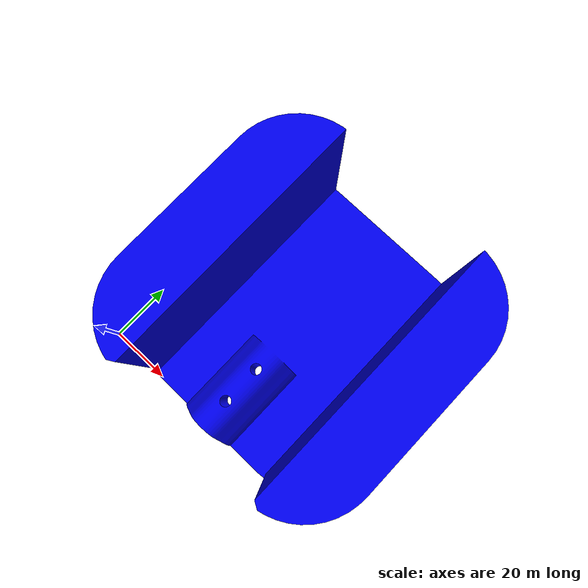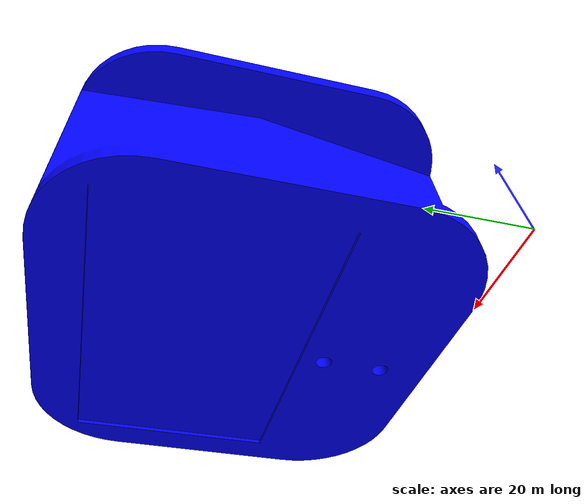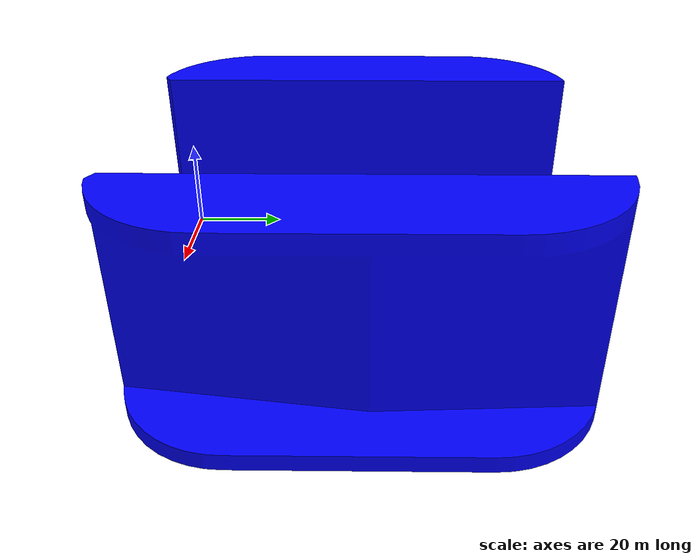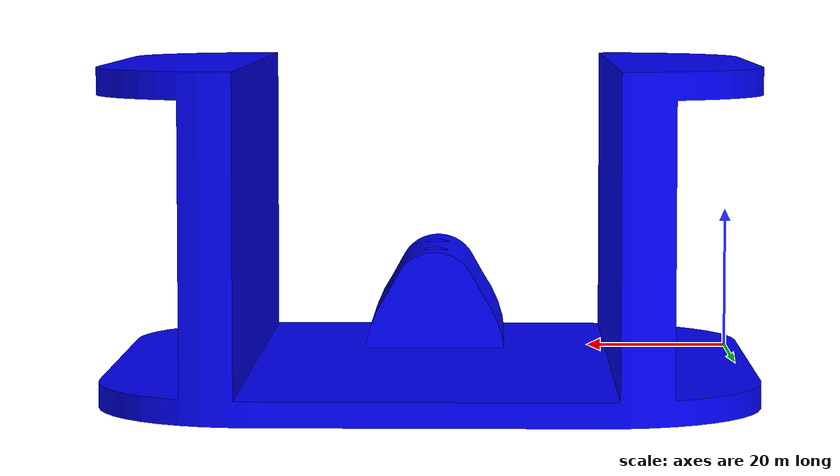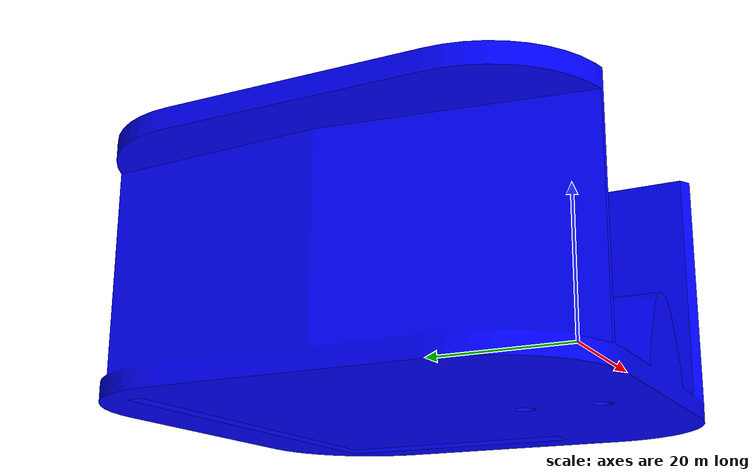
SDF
<?xml version='1.0'?>
<sdf version="1.4">
  <model name="pitcher">
    <pose>0 0 0 0 0 0</pose>
    <static>false</static>
    <link name="pitcher_base">
      <collision name="collision">
        <geometry>
         <mesh>
           <uri>model://models/pitcher/mesh/nontextured.stl</uri>
        </mesh>
        </geometry>
      </collision>
      <visual name="visual">
        <geometry>
         <mesh>
           <uri>model://models/pitcher/mesh/nontextured.stl</uri>
         </mesh>
        </geometry>
        <material>
          <ambient>0 0 1 1</ambient>
          <diffuse>0 0 1 1</diffuse>
          <specular>0.1 0.1 0.1 1</specular>
          <emissive>0 0 0 0</emissive>
        </material>
      </visual>
    </link>
  </model>
</sdf>
